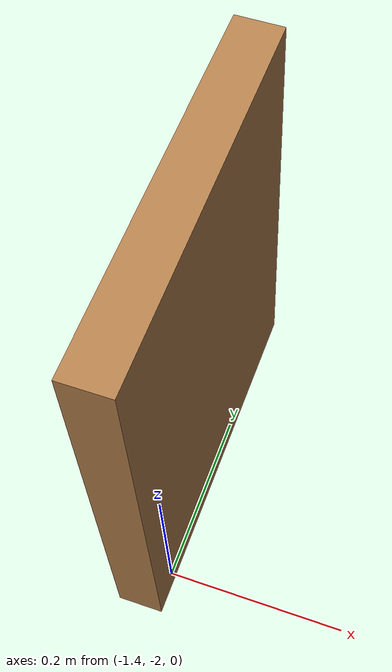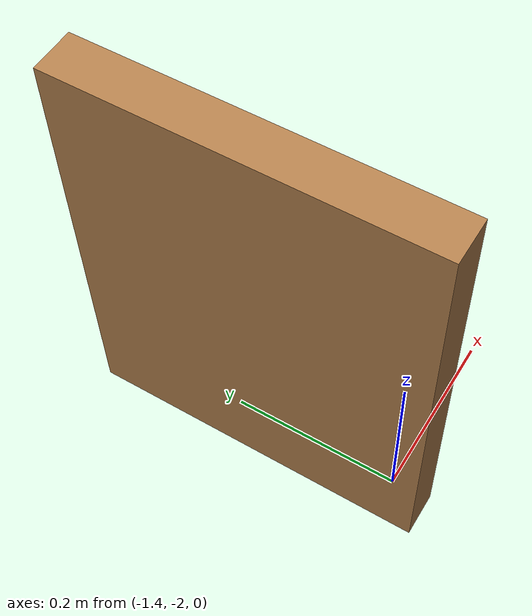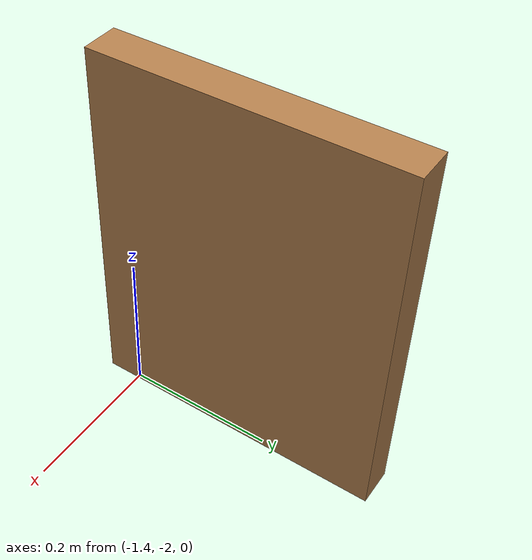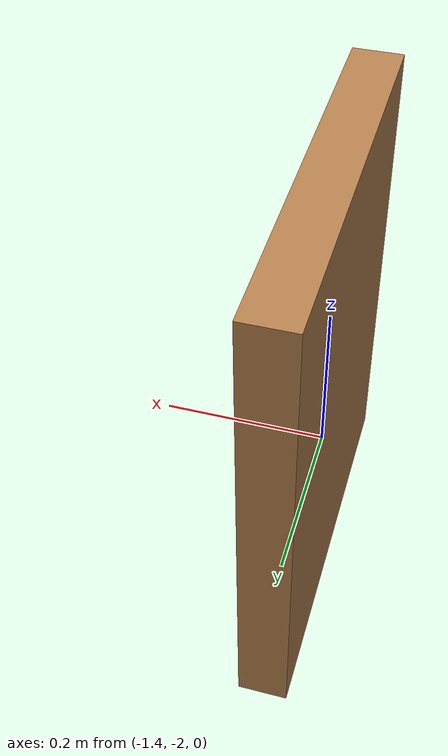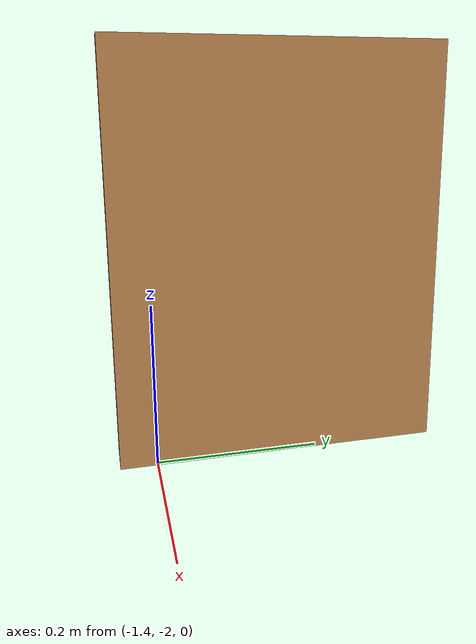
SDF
<?xml version='1.0'?>
<sdf version='1.6'>
  <model name='assignment4'>
    <pose frame=''>-1.42 -1.845 0 0 -0 0</pose>
    <link name='Wall_1'>
      <collision name='Wall_1_Collision'>
        <geometry>
          <box>
            <size>0.4 0.05 0.5</size>
          </box>
        </geometry>
        <pose frame=''>0 0 0.25 0 -0 0</pose>
      </collision>
      <visual name='Wall_1_Visual'>
        <pose frame=''>0 0 0.25 0 -0 0</pose>
        <geometry>
          <box>
            <size>0.4 0.05 0.5</size>
          </box>
        </geometry>
        <material>
          <script>
            <uri>file://media/materials/scripts/gazebo.material</uri>
            <name>Gazebo/Wood</name>
          </script>
          <ambient>1 1 1 1</ambient>
        </material>
        <meta>
          <layer>0</layer>
        </meta>
      </visual>
      <pose frame=''>0 0 0 0 -0 -1.5708</pose>
    </link>
    <static>1</static>
  </model>
</sdf>
